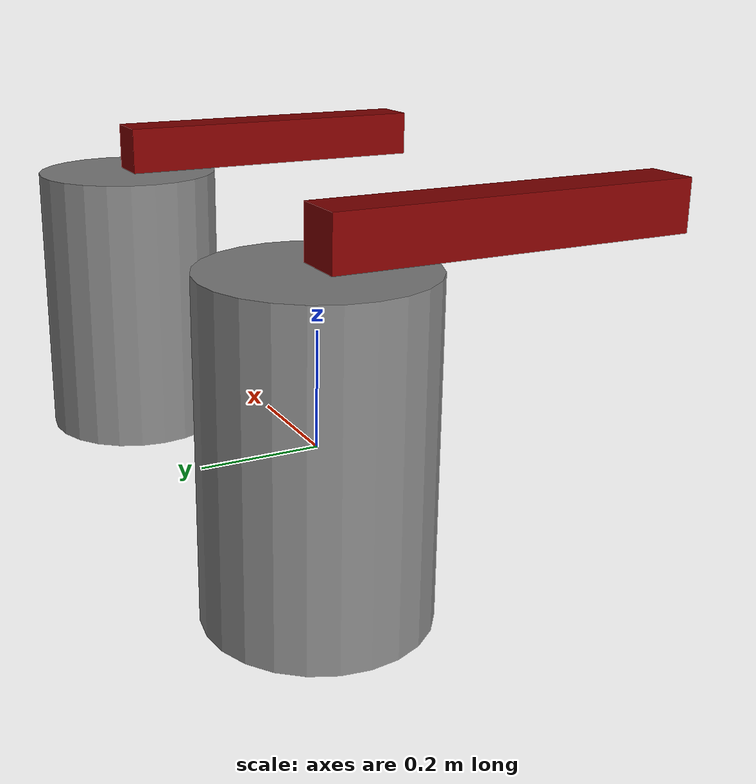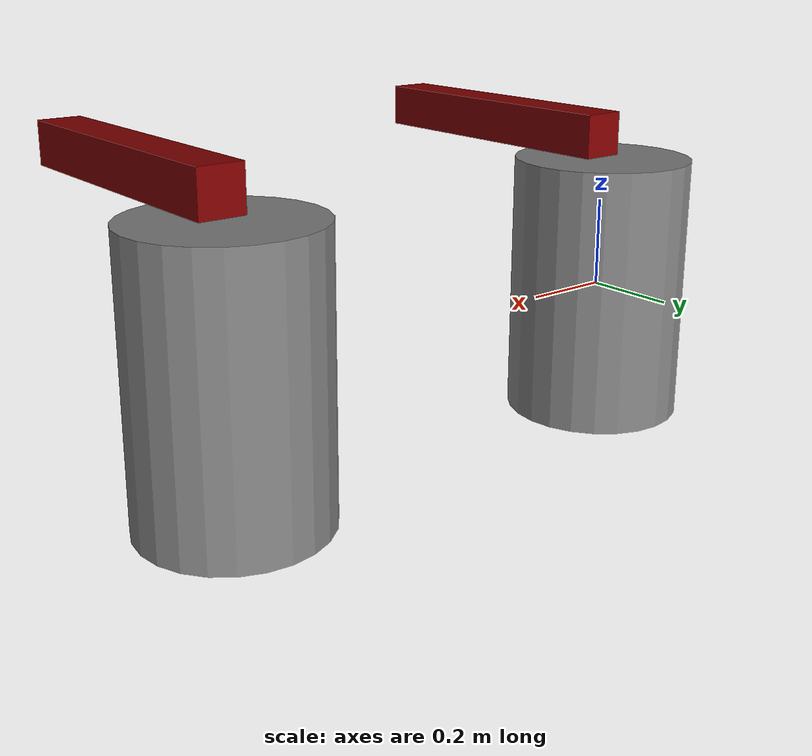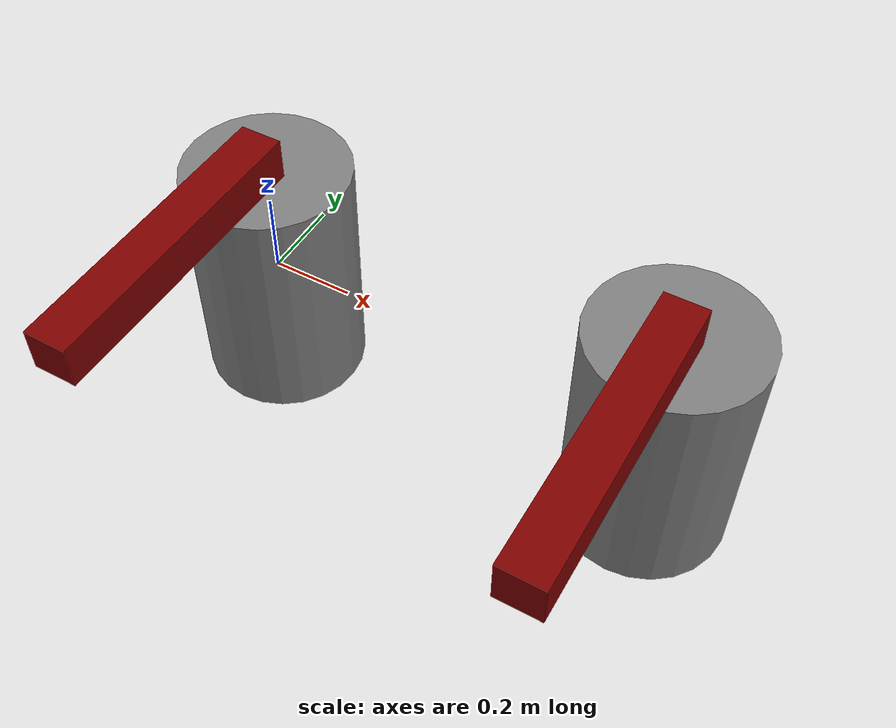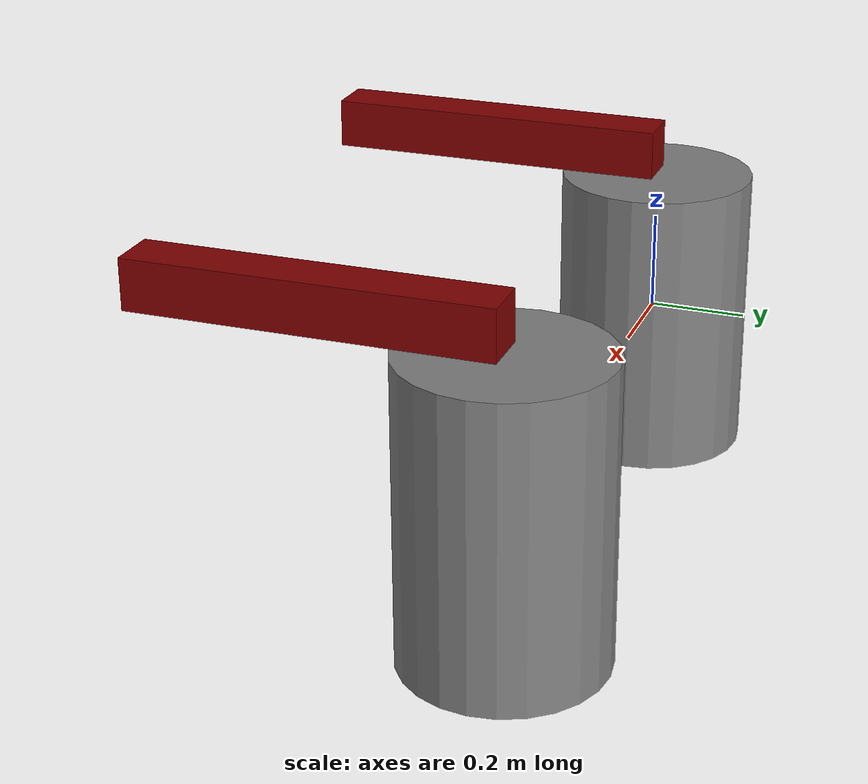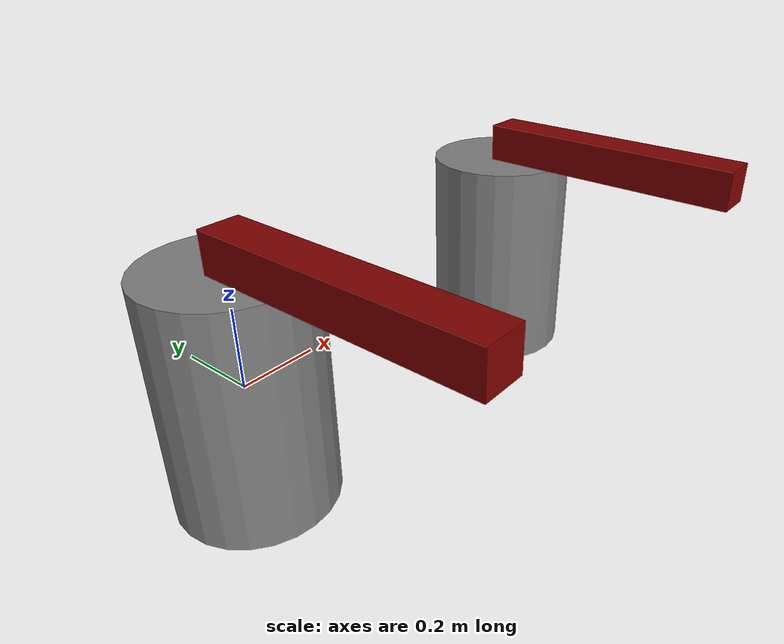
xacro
<?xml version="1.0"?>

<robot xmlns:xacro="http://www.ros.org/wiki/xacro" name="r1_robot">

    <xacro:include filename="$(find r1_robot_description)/urdf/r1_robot.xacro" />

        <link name="world" />

    <xacro:single_joint_robot name= "robot1" xposition="0.0" yposition="0.0" />

    <xacro:single_joint_robot name= "robot2" xposition="1.0" yposition="0.0" />

</robot>

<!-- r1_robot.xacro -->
<robot xmlns:xacro="http://www.ros.org/wiki/xacro">

    <property name="M_PI" value="3.1415926535897931" />
    <property name="DEG2RAD" value="0.01745329251994329577" />

    <xacro:macro name="single_joint_robot" params="name xposition yposition">

    <joint name="${name}_joint_0" type="fixed">
        <parent link="world"/>
        <child link="${name}_link_0"/>
        <origin rpy="0 0 0" xyz="${xposition} ${yposition} 0" />
    </joint>

    <link name="${name}_link_0">
        <visual>
            <geometry>
                <cylinder length="0.6" radius="0.2"/>
            </geometry>
            <material name="gray">
                <color rgba="0.5 0.5 0.5 1"/>
            </material>
        </visual>
    </link>

    <joint name="${name}_joint_1" type="revolute">
        <origin xyz="0 0 0.35" rpy="${M_PI/2} 0 0"/>
        <parent link="${name}_link_0"/>
        <child link="${name}_link_1"/>
        <limit effort="30" velocity="1.0" lower="-${M_PI}" upper="${M_PI}" />
        <axis xyz="0 1 0"/>
    </joint>

    <link name="${name}_link_1">
        <visual>
            <origin xyz="0 0 0.35" rpy="0 0 0"/>
            <geometry>
                <box size="0.1 0.1 0.7" />
            </geometry>
            <material name="red">
                <color rgba="0.5 0.0 0.0 1"/>
            </material>
        </visual>
    </link>

    <joint name="${name}_end_efector_joint" type="fixed">
        <origin xyz="0 0 0.7" rpy="${M_PI/2} 0 0"/>
        <parent link="${name}_link_1"/>
        <child link="${name}_end_effector"/>
    </joint>

    <link name="${name}_end_effector" />

    </xacro:macro>

</robot>
